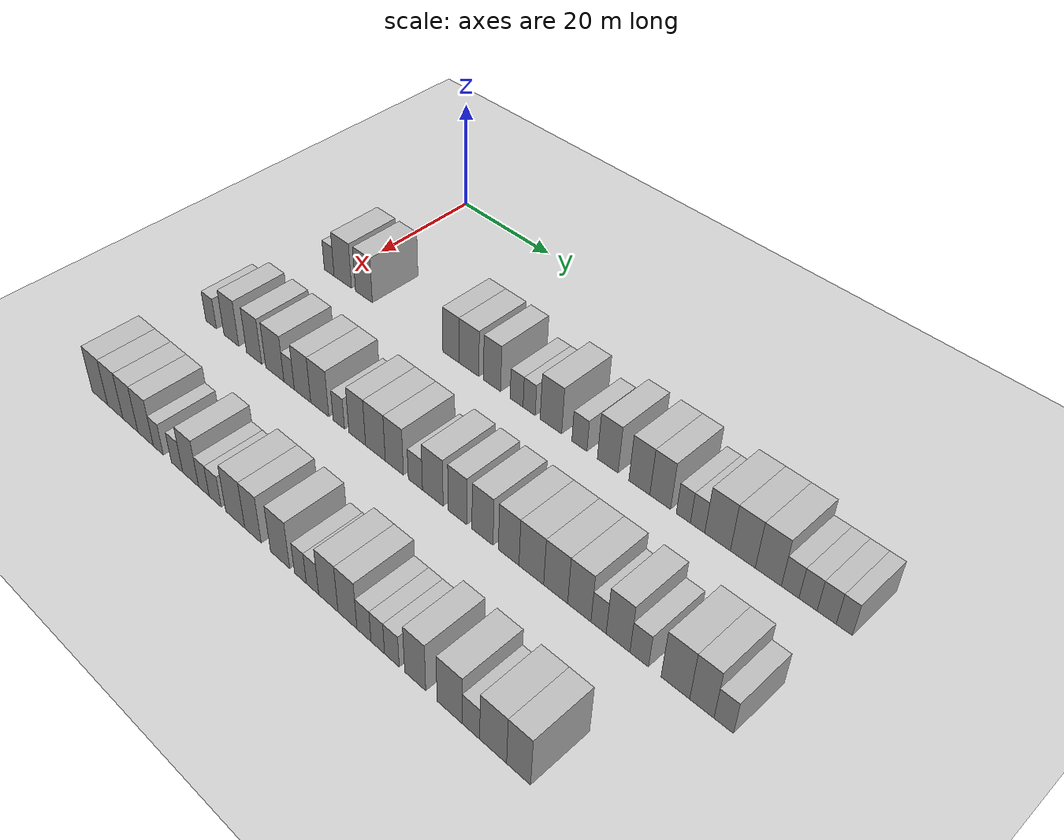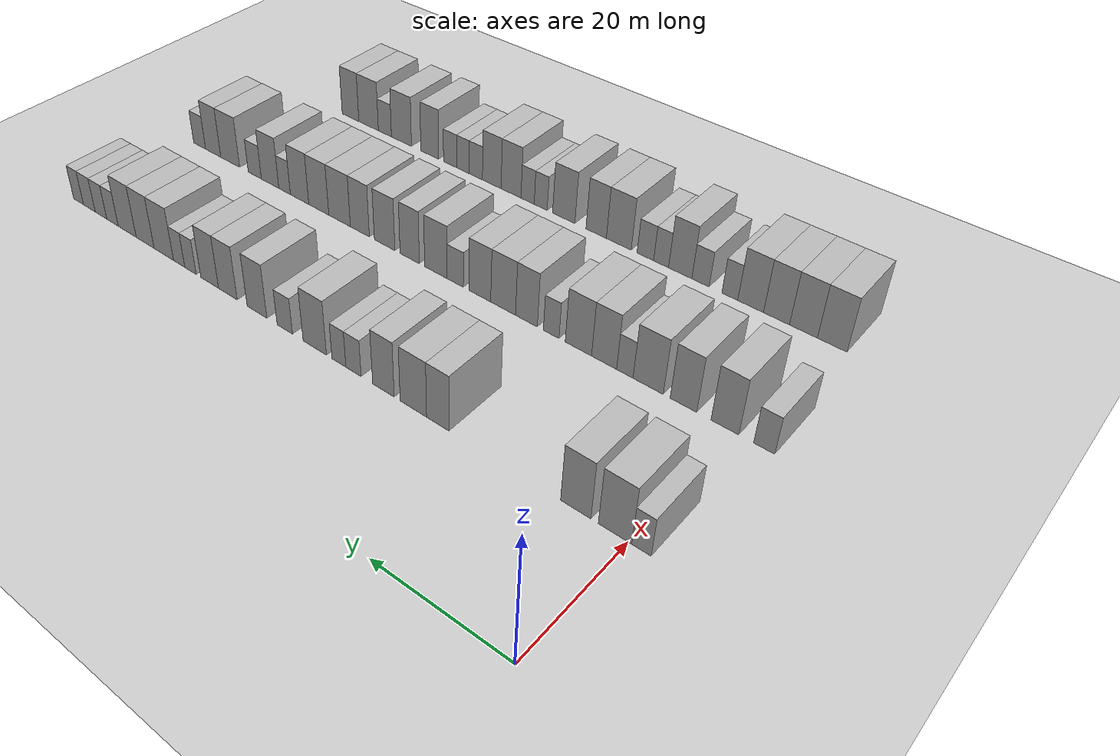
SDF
<sdf version="1.6">
 <world name="default">
  <include><name>ground_plane_1</name><uri>model://HANNAS_ground_plane</uri></include>
  <model name="building_88">
   <static>1</static>
   <pose>25.0000 -1.7095 0 0.000000 0.000000 0.000000</pose>
   <link name="link">
    <pose>0 0 3.00 0 0 0</pose>
    <collision name="collision"><geometry><box><size>10.0000 2.5234 6.0000</size></box></geometry></collision>
    <visual name="visual">
     <cast_shadows>0</cast_shadows>
     <geometry><box><size>10.0000 2.5234 6.0000</size></box></geometry>
     <material>
      <script>
       <uri>model://HANNAS_wall/materials/scripts</uri>
       <uri>model://HANNAS_wall/materials/textures</uri>
       <name>vrc/HANNAS_wall</name>
      </script>
     </material>
    </visual>
   </link>
  </model>
  <model name="building_89">
   <static>1</static>
   <pose>25.0000 1.7708 0 0.000000 0.000000 0.000000</pose>
   <link name="link">
    <pose>0 0 4.50 0 0 0</pose>
    <collision name="collision"><geometry><box><size>10.0000 4.4371 9.0000</size></box></geometry></collision>
    <visual name="visual">
     <cast_shadows>0</cast_shadows>
     <geometry><box><size>10.0000 4.4371 9.0000</size></box></geometry>
     <material>
      <script>
       <uri>model://HANNAS_wall/materials/scripts</uri>
       <uri>model://HANNAS_wall/materials/textures</uri>
       <name>vrc/HANNAS_wall</name>
      </script>
     </material>
    </visual>
   </link>
  </model>
  <model name="building_90">
   <static>1</static>
   <pose>25.0000 7.0803 0 0.000000 0.000000 0.000000</pose>
   <link name="link">
    <pose>0 0 4.50 0 0 0</pose>
    <collision name="collision"><geometry><box><size>10.0000 4.1819 9.0000</size></box></geometry></collision>
    <visual name="visual">
     <cast_shadows>0</cast_shadows>
     <geometry><box><size>10.0000 4.1819 9.0000</size></box></geometry>
     <material>
      <script>
       <uri>model://HANNAS_wall/materials/scripts</uri>
       <uri>model://HANNAS_wall/materials/textures</uri>
       <name>vrc/HANNAS_wall</name>
      </script>
     </material>
    </visual>
   </link>
  </model>
  <model name="building_91">
   <static>1</static>
   <pose>25.0000 27.5870 0 0.000000 0.000000 0.000000</pose>
   <link name="link">
    <pose>0 0 4.50 0 0 0</pose>
    <collision name="collision"><geometry><box><size>10.0000 3.6105 9.0000</size></box></geometry></collision>
    <visual name="visual">
     <cast_shadows>0</cast_shadows>
     <geometry><box><size>10.0000 3.6105 9.0000</size></box></geometry>
     <material>
      <script>
       <uri>model://HANNAS_wall/materials/scripts</uri>
       <uri>model://HANNAS_wall/materials/textures</uri>
       <name>vrc/HANNAS_wall</name>
      </script>
     </material>
    </visual>
   </link>
  </model>
  <model name="building_92">
   <static>1</static>
   <pose>25.0000 31.5603 0 0.000000 0.000000 0.000000</pose>
   <link name="link">
    <pose>0 0 4.50 0 0 0</pose>
    <collision name="collision"><geometry><box><size>10.0000 4.3361 9.0000</size></box></geometry></collision>
    <visual name="visual">
     <cast_shadows>0</cast_shadows>
     <geometry><box><size>10.0000 4.3361 9.0000</size></box></geometry>
     <material>
      <script>
       <uri>model://HANNAS_wall/materials/scripts</uri>
       <uri>model://HANNAS_wall/materials/textures</uri>
       <name>vrc/HANNAS_wall</name>
      </script>
     </material>
    </visual>
   </link>
  </model>
  <model name="building_93">
   <static>1</static>
   <pose>25.0000 36.5601 0 0.000000 0.000000 0.000000</pose>
   <link name="link">
    <pose>0 0 4.50 0 0 0</pose>
    <collision name="collision"><geometry><box><size>10.0000 3.6634 9.0000</size></box></geometry></collision>
    <visual name="visual">
     <cast_shadows>0</cast_shadows>
     <geometry><box><size>10.0000 3.6634 9.0000</size></box></geometry>
     <material>
      <script>
       <uri>model://HANNAS_wall/materials/scripts</uri>
       <uri>model://HANNAS_wall/materials/textures</uri>
       <name>vrc/HANNAS_wall</name>
      </script>
     </material>
    </visual>
   </link>
  </model>
  <model name="building_94">
   <static>1</static>
   <pose>25.0000 41.7332 0 0.000000 0.000000 0.000000</pose>
   <link name="link">
    <pose>0 0 3.00 0 0 0</pose>
    <collision name="collision"><geometry><box><size>10.0000 2.6827 6.0000</size></box></geometry></collision>
    <visual name="visual">
     <cast_shadows>0</cast_shadows>
     <geometry><box><size>10.0000 2.6827 6.0000</size></box></geometry>
     <material>
      <script>
       <uri>model://HANNAS_wall/materials/scripts</uri>
       <uri>model://HANNAS_wall/materials/textures</uri>
       <name>vrc/HANNAS_wall</name>
      </script>
     </material>
    </visual>
   </link>
  </model>
  <model name="building_95">
   <static>1</static>
   <pose>25.0000 44.3182 0 0.000000 0.000000 0.000000</pose>
   <link name="link">
    <pose>0 0 3.00 0 0 0</pose>
    <collision name="collision"><geometry><box><size>10.0000 2.4874 6.0000</size></box></geometry></collision>
    <visual name="visual">
     <cast_shadows>0</cast_shadows>
     <geometry><box><size>10.0000 2.4874 6.0000</size></box></geometry>
     <material>
      <script>
       <uri>model://HANNAS_wall/materials/scripts</uri>
       <uri>model://HANNAS_wall/materials/textures</uri>
       <name>vrc/HANNAS_wall</name>
      </script>
     </material>
    </visual>
   </link>
  </model>
  <model name="building_96">
   <static>1</static>
   <pose>25.0000 48.7139 0 0.000000 0.000000 0.000000</pose>
   <link name="link">
    <pose>0 0 4.50 0 0 0</pose>
    <collision name="collision"><geometry><box><size>10.0000 4.3042 9.0000</size></box></geometry></collision>
    <visual name="visual">
     <cast_shadows>0</cast_shadows>
     <geometry><box><size>10.0000 4.3042 9.0000</size></box></geometry>
     <material>
      <script>
       <uri>model://HANNAS_wall/materials/scripts</uri>
       <uri>model://HANNAS_wall/materials/textures</uri>
       <name>vrc/HANNAS_wall</name>
      </script>
     </material>
    </visual>
   </link>
  </model>
  <model name="building_97">
   <static>1</static>
   <pose>25.0000 54.3298 0 0.000000 0.000000 0.000000</pose>
   <link name="link">
    <pose>0 0 3.00 0 0 0</pose>
    <collision name="collision"><geometry><box><size>10.0000 2.9275 6.0000</size></box></geometry></collision>
    <visual name="visual">
     <cast_shadows>0</cast_shadows>
     <geometry><box><size>10.0000 2.9275 6.0000</size></box></geometry>
     <material>
      <script>
       <uri>model://HANNAS_wall/materials/scripts</uri>
       <uri>model://HANNAS_wall/materials/textures</uri>
       <name>vrc/HANNAS_wall</name>
      </script>
     </material>
    </visual>
   </link>
  </model>
  <model name="building_98">
   <static>1</static>
   <pose>25.0000 59.7411 0 0.000000 0.000000 0.000000</pose>
   <link name="link">
    <pose>0 0 4.50 0 0 0</pose>
    <collision name="collision"><geometry><box><size>10.0000 3.8953 9.0000</size></box></geometry></collision>
    <visual name="visual">
     <cast_shadows>0</cast_shadows>
     <geometry><box><size>10.0000 3.8953 9.0000</size></box></geometry>
     <material>
      <script>
       <uri>model://HANNAS_wall/materials/scripts</uri>
       <uri>model://HANNAS_wall/materials/textures</uri>
       <name>vrc/HANNAS_wall</name>
      </script>
     </material>
    </visual>
   </link>
  </model>
  <model name="building_99">
   <static>1</static>
   <pose>25.0000 65.6001 0 0.000000 0.000000 0.000000</pose>
   <link name="link">
    <pose>0 0 4.50 0 0 0</pose>
    <collision name="collision"><geometry><box><size>10.0000 3.8226 9.0000</size></box></geometry></collision>
    <visual name="visual">
     <cast_shadows>0</cast_shadows>
     <geometry><box><size>10.0000 3.8226 9.0000</size></box></geometry>
     <material>
      <script>
       <uri>model://HANNAS_wall/materials/scripts</uri>
       <uri>model://HANNAS_wall/materials/textures</uri>
       <name>vrc/HANNAS_wall</name>
      </script>
     </material>
    </visual>
   </link>
  </model>
  <model name="building_100">
   <static>1</static>
   <pose>25.0000 69.3575 0 0.000000 0.000000 0.000000</pose>
   <link name="link">
    <pose>0 0 4.50 0 0 0</pose>
    <collision name="collision"><geometry><box><size>10.0000 3.6922 9.0000</size></box></geometry></collision>
    <visual name="visual">
     <cast_shadows>0</cast_shadows>
     <geometry><box><size>10.0000 3.6922 9.0000</size></box></geometry>
     <material>
      <script>
       <uri>model://HANNAS_wall/materials/scripts</uri>
       <uri>model://HANNAS_wall/materials/textures</uri>
       <name>vrc/HANNAS_wall</name>
      </script>
     </material>
    </visual>
   </link>
  </model>
  <model name="building_101">
   <static>1</static>
   <pose>25.0000 73.4284 0 0.000000 0.000000 0.000000</pose>
   <link name="link">
    <pose>0 0 3.00 0 0 0</pose>
    <collision name="collision"><geometry><box><size>10.0000 2.4495 6.0000</size></box></geometry></collision>
    <visual name="visual">
     <cast_shadows>0</cast_shadows>
     <geometry><box><size>10.0000 2.4495 6.0000</size></box></geometry>
     <material>
      <script>
       <uri>model://HANNAS_wall/materials/scripts</uri>
       <uri>model://HANNAS_wall/materials/textures</uri>
       <name>vrc/HANNAS_wall</name>
      </script>
     </material>
    </visual>
   </link>
  </model>
  <model name="building_102">
   <static>1</static>
   <pose>25.0000 75.8847 0 0.000000 0.000000 0.000000</pose>
   <link name="link">
    <pose>0 0 3.00 0 0 0</pose>
    <collision name="collision"><geometry><box><size>10.0000 2.4631 6.0000</size></box></geometry></collision>
    <visual name="visual">
     <cast_shadows>0</cast_shadows>
     <geometry><box><size>10.0000 2.4631 6.0000</size></box></geometry>
     <material>
      <script>
       <uri>model://HANNAS_wall/materials/scripts</uri>
       <uri>model://HANNAS_wall/materials/textures</uri>
       <name>vrc/HANNAS_wall</name>
      </script>
     </material>
    </visual>
   </link>
  </model>
  <model name="building_103">
   <static>1</static>
   <pose>25.0000 79.2758 0 0.000000 0.000000 0.000000</pose>
   <link name="link">
    <pose>0 0 4.50 0 0 0</pose>
    <collision name="collision"><geometry><box><size>10.0000 4.3192 9.0000</size></box></geometry></collision>
    <visual name="visual">
     <cast_shadows>0</cast_shadows>
     <geometry><box><size>10.0000 4.3192 9.0000</size></box></geometry>
     <material>
      <script>
       <uri>model://HANNAS_wall/materials/scripts</uri>
       <uri>model://HANNAS_wall/materials/textures</uri>
       <name>vrc/HANNAS_wall</name>
      </script>
     </material>
    </visual>
   </link>
  </model>
  <model name="building_104">
   <static>1</static>
   <pose>25.0000 83.4762 0 0.000000 0.000000 0.000000</pose>
   <link name="link">
    <pose>0 0 4.50 0 0 0</pose>
    <collision name="collision"><geometry><box><size>10.0000 4.0816 9.0000</size></box></geometry></collision>
    <visual name="visual">
     <cast_shadows>0</cast_shadows>
     <geometry><box><size>10.0000 4.0816 9.0000</size></box></geometry>
     <material>
      <script>
       <uri>model://HANNAS_wall/materials/scripts</uri>
       <uri>model://HANNAS_wall/materials/textures</uri>
       <name>vrc/HANNAS_wall</name>
      </script>
     </material>
    </visual>
   </link>
  </model>
  <model name="building_105">
   <static>1</static>
   <pose>25.0000 87.6049 0 0.000000 0.000000 0.000000</pose>
   <link name="link">
    <pose>0 0 4.50 0 0 0</pose>
    <collision name="collision"><geometry><box><size>10.0000 4.1757 9.0000</size></box></geometry></collision>
    <visual name="visual">
     <cast_shadows>0</cast_shadows>
     <geometry><box><size>10.0000 4.1757 9.0000</size></box></geometry>
     <material>
      <script>
       <uri>model://HANNAS_wall/materials/scripts</uri>
       <uri>model://HANNAS_wall/materials/textures</uri>
       <name>vrc/HANNAS_wall</name>
      </script>
     </material>
    </visual>
   </link>
  </model>
  <model name="building_106">
   <static>1</static>
   <pose>25.0000 91.0682 0 0.000000 0.000000 0.000000</pose>
   <link name="link">
    <pose>0 0 3.00 0 0 0</pose>
    <collision name="collision"><geometry><box><size>10.0000 2.7509 6.0000</size></box></geometry></collision>
    <visual name="visual">
     <cast_shadows>0</cast_shadows>
     <geometry><box><size>10.0000 2.7509 6.0000</size></box></geometry>
     <material>
      <script>
       <uri>model://HANNAS_wall/materials/scripts</uri>
       <uri>model://HANNAS_wall/materials/textures</uri>
       <name>vrc/HANNAS_wall</name>
      </script>
     </material>
    </visual>
   </link>
  </model>
  <model name="building_107">
   <static>1</static>
   <pose>25.0000 93.8409 0 0.000000 0.000000 0.000000</pose>
   <link name="link">
    <pose>0 0 3.00 0 0 0</pose>
    <collision name="collision"><geometry><box><size>10.0000 2.7946 6.0000</size></box></geometry></collision>
    <visual name="visual">
     <cast_shadows>0</cast_shadows>
     <geometry><box><size>10.0000 2.7946 6.0000</size></box></geometry>
     <material>
      <script>
       <uri>model://HANNAS_wall/materials/scripts</uri>
       <uri>model://HANNAS_wall/materials/textures</uri>
       <name>vrc/HANNAS_wall</name>
      </script>
     </material>
    </visual>
   </link>
  </model>
  <model name="building_108">
   <static>1</static>
   <pose>25.0000 96.6786 0 0.000000 0.000000 0.000000</pose>
   <link name="link">
    <pose>0 0 3.00 0 0 0</pose>
    <collision name="collision"><geometry><box><size>10.0000 2.8807 6.0000</size></box></geometry></collision>
    <visual name="visual">
     <cast_shadows>0</cast_shadows>
     <geometry><box><size>10.0000 2.8807 6.0000</size></box></geometry>
     <material>
      <script>
       <uri>model://HANNAS_wall/materials/scripts</uri>
       <uri>model://HANNAS_wall/materials/textures</uri>
       <name>vrc/HANNAS_wall</name>
      </script>
     </material>
    </visual>
   </link>
  </model>
  <model name="building_109">
   <static>1</static>
   <pose>25.0000 99.3293 0 0.000000 0.000000 0.000000</pose>
   <link name="link">
    <pose>0 0 3.00 0 0 0</pose>
    <collision name="collision"><geometry><box><size>10.0000 2.4208 6.0000</size></box></geometry></collision>
    <visual name="visual">
     <cast_shadows>0</cast_shadows>
     <geometry><box><size>10.0000 2.4208 6.0000</size></box></geometry>
     <material>
      <script>
       <uri>model://HANNAS_wall/materials/scripts</uri>
       <uri>model://HANNAS_wall/materials/textures</uri>
       <name>vrc/HANNAS_wall</name>
      </script>
     </material>
    </visual>
   </link>
  </model>
  <model name="building_274">
   <static>1</static>
   <pose>47.0000 -4.4663 0 0.000000 0.000000 0.000000</pose>
   <link name="link">
    <pose>0 0 3.00 0 0 0</pose>
    <collision name="collision"><geometry><box><size>10.0000 2.8143 6.0000</size></box></geometry></collision>
    <visual name="visual">
     <cast_shadows>0</cast_shadows>
     <geometry><box><size>10.0000 2.8143 6.0000</size></box></geometry>
     <material>
      <script>
       <uri>model://HANNAS_wall/materials/scripts</uri>
       <uri>model://HANNAS_wall/materials/textures</uri>
       <name>vrc/HANNAS_wall</name>
      </script>
     </material>
    </visual>
   </link>
  </model>
  <model name="building_275">
   <static>1</static>
   <pose>47.0000 0.8607 0 0.000000 0.000000 0.000000</pose>
   <link name="link">
    <pose>0 0 4.50 0 0 0</pose>
    <collision name="collision"><geometry><box><size>10.0000 3.8395 9.0000</size></box></geometry></collision>
    <visual name="visual">
     <cast_shadows>0</cast_shadows>
     <geometry><box><size>10.0000 3.8395 9.0000</size></box></geometry>
     <material>
      <script>
       <uri>model://HANNAS_wall/materials/scripts</uri>
       <uri>model://HANNAS_wall/materials/textures</uri>
       <name>vrc/HANNAS_wall</name>
      </script>
     </material>
    </visual>
   </link>
  </model>
  <model name="building_276">
   <static>1</static>
   <pose>47.0000 6.6908 0 0.000000 0.000000 0.000000</pose>
   <link name="link">
    <pose>0 0 4.50 0 0 0</pose>
    <collision name="collision"><geometry><box><size>10.0000 3.8208 9.0000</size></box></geometry></collision>
    <visual name="visual">
     <cast_shadows>0</cast_shadows>
     <geometry><box><size>10.0000 3.8208 9.0000</size></box></geometry>
     <material>
      <script>
       <uri>model://HANNAS_wall/materials/scripts</uri>
       <uri>model://HANNAS_wall/materials/textures</uri>
       <name>vrc/HANNAS_wall</name>
      </script>
     </material>
    </visual>
   </link>
  </model>
  <model name="building_277">
   <static>1</static>
   <pose>47.0000 11.8435 0 0.000000 0.000000 0.000000</pose>
   <link name="link">
    <pose>0 0 4.50 0 0 0</pose>
    <collision name="collision"><geometry><box><size>10.0000 4.4847 9.0000</size></box></geometry></collision>
    <visual name="visual">
     <cast_shadows>0</cast_shadows>
     <geometry><box><size>10.0000 4.4847 9.0000</size></box></geometry>
     <material>
      <script>
       <uri>model://HANNAS_wall/materials/scripts</uri>
       <uri>model://HANNAS_wall/materials/textures</uri>
       <name>vrc/HANNAS_wall</name>
      </script>
     </material>
    </visual>
   </link>
  </model>
  <model name="building_278">
   <static>1</static>
   <pose>47.0000 15.3351 0 0.000000 0.000000 0.000000</pose>
   <link name="link">
    <pose>0 0 3.00 0 0 0</pose>
    <collision name="collision"><geometry><box><size>10.0000 2.4985 6.0000</size></box></geometry></collision>
    <visual name="visual">
     <cast_shadows>0</cast_shadows>
     <geometry><box><size>10.0000 2.4985 6.0000</size></box></geometry>
     <material>
      <script>
       <uri>model://HANNAS_wall/materials/scripts</uri>
       <uri>model://HANNAS_wall/materials/textures</uri>
       <name>vrc/HANNAS_wall</name>
      </script>
     </material>
    </visual>
   </link>
  </model>
  <model name="building_279">
   <static>1</static>
   <pose>47.0000 18.5267 0 0.000000 0.000000 0.000000</pose>
   <link name="link">
    <pose>0 0 4.50 0 0 0</pose>
    <collision name="collision"><geometry><box><size>10.0000 3.8846 9.0000</size></box></geometry></collision>
    <visual name="visual">
     <cast_shadows>0</cast_shadows>
     <geometry><box><size>10.0000 3.8846 9.0000</size></box></geometry>
     <material>
      <script>
       <uri>model://HANNAS_wall/materials/scripts</uri>
       <uri>model://HANNAS_wall/materials/textures</uri>
       <name>vrc/HANNAS_wall</name>
      </script>
     </material>
    </visual>
   </link>
  </model>
  <model name="building_280">
   <static>1</static>
   <pose>47.0000 22.5643 0 0.000000 0.000000 0.000000</pose>
   <link name="link">
    <pose>0 0 4.50 0 0 0</pose>
    <collision name="collision"><geometry><box><size>10.0000 4.1906 9.0000</size></box></geometry></collision>
    <visual name="visual">
     <cast_shadows>0</cast_shadows>
     <geometry><box><size>10.0000 4.1906 9.0000</size></box></geometry>
     <material>
      <script>
       <uri>model://HANNAS_wall/materials/scripts</uri>
       <uri>model://HANNAS_wall/materials/textures</uri>
       <name>vrc/HANNAS_wall</name>
      </script>
     </material>
    </visual>
   </link>
  </model>
  <model name="building_281">
   <static>1</static>
   <pose>47.0000 26.9421 0 0.000000 0.000000 0.000000</pose>
   <link name="link">
    <pose>0 0 3.00 0 0 0</pose>
    <collision name="collision"><geometry><box><size>10.0000 2.5650 6.0000</size></box></geometry></collision>
    <visual name="visual">
     <cast_shadows>0</cast_shadows>
     <geometry><box><size>10.0000 2.5650 6.0000</size></box></geometry>
     <material>
      <script>
       <uri>model://HANNAS_wall/materials/scripts</uri>
       <uri>model://HANNAS_wall/materials/textures</uri>
       <name>vrc/HANNAS_wall</name>
      </script>
     </material>
    </visual>
   </link>
  </model>
  <model name="building_282">
   <static>1</static>
   <pose>47.0000 31.0616 0 0.000000 0.000000 0.000000</pose>
   <link name="link">
    <pose>0 0 4.50 0 0 0</pose>
    <collision name="collision"><geometry><box><size>10.0000 3.6739 9.0000</size></box></geometry></collision>
    <visual name="visual">
     <cast_shadows>0</cast_shadows>
     <geometry><box><size>10.0000 3.6739 9.0000</size></box></geometry>
     <material>
      <script>
       <uri>model://HANNAS_wall/materials/scripts</uri>
       <uri>model://HANNAS_wall/materials/textures</uri>
       <name>vrc/HANNAS_wall</name>
      </script>
     </material>
    </visual>
   </link>
  </model>
  <model name="building_283">
   <static>1</static>
   <pose>47.0000 35.0347 0 0.000000 0.000000 0.000000</pose>
   <link name="link">
    <pose>0 0 4.50 0 0 0</pose>
    <collision name="collision"><geometry><box><size>10.0000 4.2725 9.0000</size></box></geometry></collision>
    <visual name="visual">
     <cast_shadows>0</cast_shadows>
     <geometry><box><size>10.0000 4.2725 9.0000</size></box></geometry>
     <material>
      <script>
       <uri>model://HANNAS_wall/materials/scripts</uri>
       <uri>model://HANNAS_wall/materials/textures</uri>
       <name>vrc/HANNAS_wall</name>
      </script>
     </material>
    </visual>
   </link>
  </model>
  <model name="building_284">
   <static>1</static>
   <pose>47.0000 39.0945 0 0.000000 0.000000 0.000000</pose>
   <link name="link">
    <pose>0 0 4.50 0 0 0</pose>
    <collision name="collision"><geometry><box><size>10.0000 3.8472 9.0000</size></box></geometry></collision>
    <visual name="visual">
     <cast_shadows>0</cast_shadows>
     <geometry><box><size>10.0000 3.8472 9.0000</size></box></geometry>
     <material>
      <script>
       <uri>model://HANNAS_wall/materials/scripts</uri>
       <uri>model://HANNAS_wall/materials/textures</uri>
       <name>vrc/HANNAS_wall</name>
      </script>
     </material>
    </visual>
   </link>
  </model>
  <model name="building_285">
   <static>1</static>
   <pose>47.0000 43.4852 0 0.000000 0.000000 0.000000</pose>
   <link name="link">
    <pose>0 0 3.00 0 0 0</pose>
    <collision name="collision"><geometry><box><size>10.0000 2.9341 6.0000</size></box></geometry></collision>
    <visual name="visual">
     <cast_shadows>0</cast_shadows>
     <geometry><box><size>10.0000 2.9341 6.0000</size></box></geometry>
     <material>
      <script>
       <uri>model://HANNAS_wall/materials/scripts</uri>
       <uri>model://HANNAS_wall/materials/textures</uri>
       <name>vrc/HANNAS_wall</name>
      </script>
     </material>
    </visual>
   </link>
  </model>
  <model name="building_286">
   <static>1</static>
   <pose>47.0000 47.0379 0 0.000000 0.000000 0.000000</pose>
   <link name="link">
    <pose>0 0 4.50 0 0 0</pose>
    <collision name="collision"><geometry><box><size>10.0000 4.1714 9.0000</size></box></geometry></collision>
    <visual name="visual">
     <cast_shadows>0</cast_shadows>
     <geometry><box><size>10.0000 4.1714 9.0000</size></box></geometry>
     <material>
      <script>
       <uri>model://HANNAS_wall/materials/scripts</uri>
       <uri>model://HANNAS_wall/materials/textures</uri>
       <name>vrc/HANNAS_wall</name>
      </script>
     </material>
    </visual>
   </link>
  </model>
  <model name="building_287">
   <static>1</static>
   <pose>47.0000 51.9585 0 0.000000 0.000000 0.000000</pose>
   <link name="link">
    <pose>0 0 4.50 0 0 0</pose>
    <collision name="collision"><geometry><box><size>10.0000 3.6699 9.0000</size></box></geometry></collision>
    <visual name="visual">
     <cast_shadows>0</cast_shadows>
     <geometry><box><size>10.0000 3.6699 9.0000</size></box></geometry>
     <material>
      <script>
       <uri>model://HANNAS_wall/materials/scripts</uri>
       <uri>model://HANNAS_wall/materials/textures</uri>
       <name>vrc/HANNAS_wall</name>
      </script>
     </material>
    </visual>
   </link>
  </model>
  <model name="building_288">
   <static>1</static>
   <pose>47.0000 56.8059 0 0.000000 0.000000 0.000000</pose>
   <link name="link">
    <pose>0 0 4.50 0 0 0</pose>
    <collision name="collision"><geometry><box><size>10.0000 4.0249 9.0000</size></box></geometry></collision>
    <visual name="visual">
     <cast_shadows>0</cast_shadows>
     <geometry><box><size>10.0000 4.0249 9.0000</size></box></geometry>
     <material>
      <script>
       <uri>model://HANNAS_wall/materials/scripts</uri>
       <uri>model://HANNAS_wall/materials/textures</uri>
       <name>vrc/HANNAS_wall</name>
      </script>
     </material>
    </visual>
   </link>
  </model>
  <model name="building_289">
   <static>1</static>
   <pose>47.0000 61.7333 0 0.000000 0.000000 0.000000</pose>
   <link name="link">
    <pose>0 0 4.50 0 0 0</pose>
    <collision name="collision"><geometry><box><size>10.0000 3.8298 9.0000</size></box></geometry></collision>
    <visual name="visual">
     <cast_shadows>0</cast_shadows>
     <geometry><box><size>10.0000 3.8298 9.0000</size></box></geometry>
     <material>
      <script>
       <uri>model://HANNAS_wall/materials/scripts</uri>
       <uri>model://HANNAS_wall/materials/textures</uri>
       <name>vrc/HANNAS_wall</name>
      </script>
     </material>
    </visual>
   </link>
  </model>
  <model name="building_290">
   <static>1</static>
   <pose>47.0000 65.8833 0 0.000000 0.000000 0.000000</pose>
   <link name="link">
    <pose>0 0 4.50 0 0 0</pose>
    <collision name="collision"><geometry><box><size>10.0000 4.4701 9.0000</size></box></geometry></collision>
    <visual name="visual">
     <cast_shadows>0</cast_shadows>
     <geometry><box><size>10.0000 4.4701 9.0000</size></box></geometry>
     <material>
      <script>
       <uri>model://HANNAS_wall/materials/scripts</uri>
       <uri>model://HANNAS_wall/materials/textures</uri>
       <name>vrc/HANNAS_wall</name>
      </script>
     </material>
    </visual>
   </link>
  </model>
  <model name="building_291">
   <static>1</static>
   <pose>47.0000 70.2341 0 0.000000 0.000000 0.000000</pose>
   <link name="link">
    <pose>0 0 4.50 0 0 0</pose>
    <collision name="collision"><geometry><box><size>10.0000 4.2315 9.0000</size></box></geometry></collision>
    <visual name="visual">
     <cast_shadows>0</cast_shadows>
     <geometry><box><size>10.0000 4.2315 9.0000</size></box></geometry>
     <material>
      <script>
       <uri>model://HANNAS_wall/materials/scripts</uri>
       <uri>model://HANNAS_wall/materials/textures</uri>
       <name>vrc/HANNAS_wall</name>
      </script>
     </material>
    </visual>
   </link>
  </model>
  <model name="building_292">
   <static>1</static>
   <pose>47.0000 74.3507 0 0.000000 0.000000 0.000000</pose>
   <link name="link">
    <pose>0 0 4.50 0 0 0</pose>
    <collision name="collision"><geometry><box><size>10.0000 4.0016 9.0000</size></box></geometry></collision>
    <visual name="visual">
     <cast_shadows>0</cast_shadows>
     <geometry><box><size>10.0000 4.0016 9.0000</size></box></geometry>
     <material>
      <script>
       <uri>model://HANNAS_wall/materials/scripts</uri>
       <uri>model://HANNAS_wall/materials/textures</uri>
       <name>vrc/HANNAS_wall</name>
      </script>
     </material>
    </visual>
   </link>
  </model>
  <model name="building_293">
   <static>1</static>
   <pose>47.0000 77.6265 0 0.000000 0.000000 0.000000</pose>
   <link name="link">
    <pose>0 0 3.00 0 0 0</pose>
    <collision name="collision"><geometry><box><size>10.0000 2.5500 6.0000</size></box></geometry></collision>
    <visual name="visual">
     <cast_shadows>0</cast_shadows>
     <geometry><box><size>10.0000 2.5500 6.0000</size></box></geometry>
     <material>
      <script>
       <uri>model://HANNAS_wall/materials/scripts</uri>
       <uri>model://HANNAS_wall/materials/textures</uri>
       <name>vrc/HANNAS_wall</name>
      </script>
     </material>
    </visual>
   </link>
  </model>
  <model name="building_294">
   <static>1</static>
   <pose>47.0000 80.8652 0 0.000000 0.000000 0.000000</pose>
   <link name="link">
    <pose>0 0 4.50 0 0 0</pose>
    <collision name="collision"><geometry><box><size>10.0000 3.9274 9.0000</size></box></geometry></collision>
    <visual name="visual">
     <cast_shadows>0</cast_shadows>
     <geometry><box><size>10.0000 3.9274 9.0000</size></box></geometry>
     <material>
      <script>
       <uri>model://HANNAS_wall/materials/scripts</uri>
       <uri>model://HANNAS_wall/materials/textures</uri>
       <name>vrc/HANNAS_wall</name>
      </script>
     </material>
    </visual>
   </link>
  </model>
  <model name="building_295">
   <static>1</static>
   <pose>47.0000 84.3284 0 0.000000 0.000000 0.000000</pose>
   <link name="link">
    <pose>0 0 3.00 0 0 0</pose>
    <collision name="collision"><geometry><box><size>10.0000 2.9989 6.0000</size></box></geometry></collision>
    <visual name="visual">
     <cast_shadows>0</cast_shadows>
     <geometry><box><size>10.0000 2.9989 6.0000</size></box></geometry>
     <material>
      <script>
       <uri>model://HANNAS_wall/materials/scripts</uri>
       <uri>model://HANNAS_wall/materials/textures</uri>
       <name>vrc/HANNAS_wall</name>
      </script>
     </material>
    </visual>
   </link>
  </model>
  <model name="building_296">
   <static>1</static>
   <pose>47.0000 90.0485 0 0.000000 0.000000 0.000000</pose>
   <link name="link">
    <pose>0 0 4.50 0 0 0</pose>
    <collision name="collision"><geometry><box><size>10.0000 4.4412 9.0000</size></box></geometry></collision>
    <visual name="visual">
     <cast_shadows>0</cast_shadows>
     <geometry><box><size>10.0000 4.4412 9.0000</size></box></geometry>
     <material>
      <script>
       <uri>model://HANNAS_wall/materials/scripts</uri>
       <uri>model://HANNAS_wall/materials/textures</uri>
       <name>vrc/HANNAS_wall</name>
      </script>
     </material>
    </visual>
   </link>
  </model>
  <model name="building_297">
   <static>1</static>
   <pose>47.0000 94.1055 0 0.000000 0.000000 0.000000</pose>
   <link name="link">
    <pose>0 0 4.50 0 0 0</pose>
    <collision name="collision"><geometry><box><size>10.0000 3.6728 9.0000</size></box></geometry></collision>
    <visual name="visual">
     <cast_shadows>0</cast_shadows>
     <geometry><box><size>10.0000 3.6728 9.0000</size></box></geometry>
     <material>
      <script>
       <uri>model://HANNAS_wall/materials/scripts</uri>
       <uri>model://HANNAS_wall/materials/textures</uri>
       <name>vrc/HANNAS_wall</name>
      </script>
     </material>
    </visual>
   </link>
  </model>
  <model name="building_298">
   <static>1</static>
   <pose>47.0000 97.3930 0 0.000000 0.000000 0.000000</pose>
   <link name="link">
    <pose>0 0 3.00 0 0 0</pose>
    <collision name="collision"><geometry><box><size>10.0000 2.9022 6.0000</size></box></geometry></collision>
    <visual name="visual">
     <cast_shadows>0</cast_shadows>
     <geometry><box><size>10.0000 2.9022 6.0000</size></box></geometry>
     <material>
      <script>
       <uri>model://HANNAS_wall/materials/scripts</uri>
       <uri>model://HANNAS_wall/materials/textures</uri>
       <name>vrc/HANNAS_wall</name>
      </script>
     </material>
    </visual>
   </link>
  </model>
  <model name="building_465">
   <static>1</static>
   <pose>69.0000 -2.1582 0 0.000000 0.000000 0.000000</pose>
   <link name="link">
    <pose>0 0 4.50 0 0 0</pose>
    <collision name="collision"><geometry><box><size>10.0000 4.2136 9.0000</size></box></geometry></collision>
    <visual name="visual">
     <cast_shadows>0</cast_shadows>
     <geometry><box><size>10.0000 4.2136 9.0000</size></box></geometry>
     <material>
      <script>
       <uri>model://HANNAS_wall/materials/scripts</uri>
       <uri>model://HANNAS_wall/materials/textures</uri>
       <name>vrc/HANNAS_wall</name>
      </script>
     </material>
    </visual>
   </link>
  </model>
  <model name="building_466">
   <static>1</static>
   <pose>69.0000 1.9636 0 0.000000 0.000000 0.000000</pose>
   <link name="link">
    <pose>0 0 4.50 0 0 0</pose>
    <collision name="collision"><geometry><box><size>10.0000 4.0298 9.0000</size></box></geometry></collision>
    <visual name="visual">
     <cast_shadows>0</cast_shadows>
     <geometry><box><size>10.0000 4.0298 9.0000</size></box></geometry>
     <material>
      <script>
       <uri>model://HANNAS_wall/materials/scripts</uri>
       <uri>model://HANNAS_wall/materials/textures</uri>
       <name>vrc/HANNAS_wall</name>
      </script>
     </material>
    </visual>
   </link>
  </model>
  <model name="building_467">
   <static>1</static>
   <pose>69.0000 5.9141 0 0.000000 0.000000 0.000000</pose>
   <link name="link">
    <pose>0 0 4.50 0 0 0</pose>
    <collision name="collision"><geometry><box><size>10.0000 3.8712 9.0000</size></box></geometry></collision>
    <visual name="visual">
     <cast_shadows>0</cast_shadows>
     <geometry><box><size>10.0000 3.8712 9.0000</size></box></geometry>
     <material>
      <script>
       <uri>model://HANNAS_wall/materials/scripts</uri>
       <uri>model://HANNAS_wall/materials/textures</uri>
       <name>vrc/HANNAS_wall</name>
      </script>
     </material>
    </visual>
   </link>
  </model>
  <model name="building_468">
   <static>1</static>
   <pose>69.0000 9.8162 0 0.000000 0.000000 0.000000</pose>
   <link name="link">
    <pose>0 0 4.50 0 0 0</pose>
    <collision name="collision"><geometry><box><size>10.0000 3.9331 9.0000</size></box></geometry></collision>
    <visual name="visual">
     <cast_shadows>0</cast_shadows>
     <geometry><box><size>10.0000 3.9331 9.0000</size></box></geometry>
     <material>
      <script>
       <uri>model://HANNAS_wall/materials/scripts</uri>
       <uri>model://HANNAS_wall/materials/textures</uri>
       <name>vrc/HANNAS_wall</name>
      </script>
     </material>
    </visual>
   </link>
  </model>
  <model name="building_469">
   <static>1</static>
   <pose>69.0000 13.0166 0 0.000000 0.000000 0.000000</pose>
   <link name="link">
    <pose>0 0 3.00 0 0 0</pose>
    <collision name="collision"><geometry><box><size>10.0000 2.4676 6.0000</size></box></geometry></collision>
    <visual name="visual">
     <cast_shadows>0</cast_shadows>
     <geometry><box><size>10.0000 2.4676 6.0000</size></box></geometry>
     <material>
      <script>
       <uri>model://HANNAS_wall/materials/scripts</uri>
       <uri>model://HANNAS_wall/materials/textures</uri>
       <name>vrc/HANNAS_wall</name>
      </script>
     </material>
    </visual>
   </link>
  </model>
  <model name="building_470">
   <static>1</static>
   <pose>69.0000 17.6376 0 0.000000 0.000000 0.000000</pose>
   <link name="link">
    <pose>0 0 3.00 0 0 0</pose>
    <collision name="collision"><geometry><box><size>10.0000 2.7744 6.0000</size></box></geometry></collision>
    <visual name="visual">
     <cast_shadows>0</cast_shadows>
     <geometry><box><size>10.0000 2.7744 6.0000</size></box></geometry>
     <material>
      <script>
       <uri>model://HANNAS_wall/materials/scripts</uri>
       <uri>model://HANNAS_wall/materials/textures</uri>
       <name>vrc/HANNAS_wall</name>
      </script>
     </material>
    </visual>
   </link>
  </model>
  <model name="building_471">
   <static>1</static>
   <pose>69.0000 20.9280 0 0.000000 0.000000 0.000000</pose>
   <link name="link">
    <pose>0 0 4.50 0 0 0</pose>
    <collision name="collision"><geometry><box><size>10.0000 3.8065 9.0000</size></box></geometry></collision>
    <visual name="visual">
     <cast_shadows>0</cast_shadows>
     <geometry><box><size>10.0000 3.8065 9.0000</size></box></geometry>
     <material>
      <script>
       <uri>model://HANNAS_wall/materials/scripts</uri>
       <uri>model://HANNAS_wall/materials/textures</uri>
       <name>vrc/HANNAS_wall</name>
      </script>
     </material>
    </visual>
   </link>
  </model>
  <model name="building_472">
   <static>1</static>
   <pose>69.0000 24.0694 0 0.000000 0.000000 0.000000</pose>
   <link name="link">
    <pose>0 0 3.00 0 0 0</pose>
    <collision name="collision"><geometry><box><size>10.0000 2.4761 6.0000</size></box></geometry></collision>
    <visual name="visual">
     <cast_shadows>0</cast_shadows>
     <geometry><box><size>10.0000 2.4761 6.0000</size></box></geometry>
     <material>
      <script>
       <uri>model://HANNAS_wall/materials/scripts</uri>
       <uri>model://HANNAS_wall/materials/textures</uri>
       <name>vrc/HANNAS_wall</name>
      </script>
     </material>
    </visual>
   </link>
  </model>
  <model name="building_473">
   <static>1</static>
   <pose>69.0000 26.7030 0 0.000000 0.000000 0.000000</pose>
   <link name="link">
    <pose>0 0 3.00 0 0 0</pose>
    <collision name="collision"><geometry><box><size>10.0000 2.7911 6.0000</size></box></geometry></collision>
    <visual name="visual">
     <cast_shadows>0</cast_shadows>
     <geometry><box><size>10.0000 2.7911 6.0000</size></box></geometry>
     <material>
      <script>
       <uri>model://HANNAS_wall/materials/scripts</uri>
       <uri>model://HANNAS_wall/materials/textures</uri>
       <name>vrc/HANNAS_wall</name>
      </script>
     </material>
    </visual>
   </link>
  </model>
  <model name="building_474">
   <static>1</static>
   <pose>69.0000 31.2573 0 0.000000 0.000000 0.000000</pose>
   <link name="link">
    <pose>0 0 4.50 0 0 0</pose>
    <collision name="collision"><geometry><box><size>10.0000 4.3175 9.0000</size></box></geometry></collision>
    <visual name="visual">
     <cast_shadows>0</cast_shadows>
     <geometry><box><size>10.0000 4.3175 9.0000</size></box></geometry>
     <material>
      <script>
       <uri>model://HANNAS_wall/materials/scripts</uri>
       <uri>model://HANNAS_wall/materials/textures</uri>
       <name>vrc/HANNAS_wall</name>
      </script>
     </material>
    </visual>
   </link>
  </model>
  <model name="building_475">
   <static>1</static>
   <pose>69.0000 35.2203 0 0.000000 0.000000 0.000000</pose>
   <link name="link">
    <pose>0 0 4.50 0 0 0</pose>
    <collision name="collision"><geometry><box><size>10.0000 3.6085 9.0000</size></box></geometry></collision>
    <visual name="visual">
     <cast_shadows>0</cast_shadows>
     <geometry><box><size>10.0000 3.6085 9.0000</size></box></geometry>
     <material>
      <script>
       <uri>model://HANNAS_wall/materials/scripts</uri>
       <uri>model://HANNAS_wall/materials/textures</uri>
       <name>vrc/HANNAS_wall</name>
      </script>
     </material>
    </visual>
   </link>
  </model>
  <model name="building_476">
   <static>1</static>
   <pose>69.0000 41.0681 0 0.000000 0.000000 0.000000</pose>
   <link name="link">
    <pose>0 0 4.50 0 0 0</pose>
    <collision name="collision"><geometry><box><size>10.0000 4.0871 9.0000</size></box></geometry></collision>
    <visual name="visual">
     <cast_shadows>0</cast_shadows>
     <geometry><box><size>10.0000 4.0871 9.0000</size></box></geometry>
     <material>
      <script>
       <uri>model://HANNAS_wall/materials/scripts</uri>
       <uri>model://HANNAS_wall/materials/textures</uri>
       <name>vrc/HANNAS_wall</name>
      </script>
     </material>
    </visual>
   </link>
  </model>
  <model name="building_477">
   <static>1</static>
   <pose>69.0000 45.3365 0 0.000000 0.000000 0.000000</pose>
   <link name="link">
    <pose>0 0 3.00 0 0 0</pose>
    <collision name="collision"><geometry><box><size>10.0000 2.4496 6.0000</size></box></geometry></collision>
    <visual name="visual">
     <cast_shadows>0</cast_shadows>
     <geometry><box><size>10.0000 2.4496 6.0000</size></box></geometry>
     <material>
      <script>
       <uri>model://HANNAS_wall/materials/scripts</uri>
       <uri>model://HANNAS_wall/materials/textures</uri>
       <name>vrc/HANNAS_wall</name>
      </script>
     </material>
    </visual>
   </link>
  </model>
  <model name="building_478">
   <static>1</static>
   <pose>69.0000 47.8229 0 0.000000 0.000000 0.000000</pose>
   <link name="link">
    <pose>0 0 3.00 0 0 0</pose>
    <collision name="collision"><geometry><box><size>10.0000 2.5231 6.0000</size></box></geometry></collision>
    <visual name="visual">
     <cast_shadows>0</cast_shadows>
     <geometry><box><size>10.0000 2.5231 6.0000</size></box></geometry>
     <material>
      <script>
       <uri>model://HANNAS_wall/materials/scripts</uri>
       <uri>model://HANNAS_wall/materials/textures</uri>
       <name>vrc/HANNAS_wall</name>
      </script>
     </material>
    </visual>
   </link>
  </model>
  <model name="building_479">
   <static>1</static>
   <pose>69.0000 51.0149 0 0.000000 0.000000 0.000000</pose>
   <link name="link">
    <pose>0 0 4.50 0 0 0</pose>
    <collision name="collision"><geometry><box><size>10.0000 3.8610 9.0000</size></box></geometry></collision>
    <visual name="visual">
     <cast_shadows>0</cast_shadows>
     <geometry><box><size>10.0000 3.8610 9.0000</size></box></geometry>
     <material>
      <script>
       <uri>model://HANNAS_wall/materials/scripts</uri>
       <uri>model://HANNAS_wall/materials/textures</uri>
       <name>vrc/HANNAS_wall</name>
      </script>
     </material>
    </visual>
   </link>
  </model>
  <model name="building_480">
   <static>1</static>
   <pose>69.0000 54.7886 0 0.000000 0.000000 0.000000</pose>
   <link name="link">
    <pose>0 0 4.50 0 0 0</pose>
    <collision name="collision"><geometry><box><size>10.0000 3.6863 9.0000</size></box></geometry></collision>
    <visual name="visual">
     <cast_shadows>0</cast_shadows>
     <geometry><box><size>10.0000 3.6863 9.0000</size></box></geometry>
     <material>
      <script>
       <uri>model://HANNAS_wall/materials/scripts</uri>
       <uri>model://HANNAS_wall/materials/textures</uri>
       <name>vrc/HANNAS_wall</name>
      </script>
     </material>
    </visual>
   </link>
  </model>
  <model name="building_481">
   <static>1</static>
   <pose>69.0000 57.9792 0 0.000000 0.000000 0.000000</pose>
   <link name="link">
    <pose>0 0 3.00 0 0 0</pose>
    <collision name="collision"><geometry><box><size>10.0000 2.6950 6.0000</size></box></geometry></collision>
    <visual name="visual">
     <cast_shadows>0</cast_shadows>
     <geometry><box><size>10.0000 2.6950 6.0000</size></box></geometry>
     <material>
      <script>
       <uri>model://HANNAS_wall/materials/scripts</uri>
       <uri>model://HANNAS_wall/materials/textures</uri>
       <name>vrc/HANNAS_wall</name>
      </script>
     </material>
    </visual>
   </link>
  </model>
  <model name="building_482">
   <static>1</static>
   <pose>69.0000 60.5986 0 0.000000 0.000000 0.000000</pose>
   <link name="link">
    <pose>0 0 3.00 0 0 0</pose>
    <collision name="collision"><geometry><box><size>10.0000 2.5438 6.0000</size></box></geometry></collision>
    <visual name="visual">
     <cast_shadows>0</cast_shadows>
     <geometry><box><size>10.0000 2.5438 6.0000</size></box></geometry>
     <material>
      <script>
       <uri>model://HANNAS_wall/materials/scripts</uri>
       <uri>model://HANNAS_wall/materials/textures</uri>
       <name>vrc/HANNAS_wall</name>
      </script>
     </material>
    </visual>
   </link>
  </model>
  <model name="building_483">
   <static>1</static>
   <pose>69.0000 63.2234 0 0.000000 0.000000 0.000000</pose>
   <link name="link">
    <pose>0 0 3.00 0 0 0</pose>
    <collision name="collision"><geometry><box><size>10.0000 2.7057 6.0000</size></box></geometry></collision>
    <visual name="visual">
     <cast_shadows>0</cast_shadows>
     <geometry><box><size>10.0000 2.7057 6.0000</size></box></geometry>
     <material>
      <script>
       <uri>model://HANNAS_wall/materials/scripts</uri>
       <uri>model://HANNAS_wall/materials/textures</uri>
       <name>vrc/HANNAS_wall</name>
      </script>
     </material>
    </visual>
   </link>
  </model>
  <model name="building_484">
   <static>1</static>
   <pose>69.0000 67.4701 0 0.000000 0.000000 0.000000</pose>
   <link name="link">
    <pose>0 0 4.50 0 0 0</pose>
    <collision name="collision"><geometry><box><size>10.0000 3.7876 9.0000</size></box></geometry></collision>
    <visual name="visual">
     <cast_shadows>0</cast_shadows>
     <geometry><box><size>10.0000 3.7876 9.0000</size></box></geometry>
     <material>
      <script>
       <uri>model://HANNAS_wall/materials/scripts</uri>
       <uri>model://HANNAS_wall/materials/textures</uri>
       <name>vrc/HANNAS_wall</name>
      </script>
     </material>
    </visual>
   </link>
  </model>
  <model name="building_485">
   <static>1</static>
   <pose>69.0000 73.5506 0 0.000000 0.000000 0.000000</pose>
   <link name="link">
    <pose>0 0 4.50 0 0 0</pose>
    <collision name="collision"><geometry><box><size>10.0000 4.3735 9.0000</size></box></geometry></collision>
    <visual name="visual">
     <cast_shadows>0</cast_shadows>
     <geometry><box><size>10.0000 4.3735 9.0000</size></box></geometry>
     <material>
      <script>
       <uri>model://HANNAS_wall/materials/scripts</uri>
       <uri>model://HANNAS_wall/materials/textures</uri>
       <name>vrc/HANNAS_wall</name>
      </script>
     </material>
    </visual>
   </link>
  </model>
  <model name="building_486">
   <static>1</static>
   <pose>69.0000 77.1958 0 0.000000 0.000000 0.000000</pose>
   <link name="link">
    <pose>0 0 3.00 0 0 0</pose>
    <collision name="collision"><geometry><box><size>10.0000 2.9170 6.0000</size></box></geometry></collision>
    <visual name="visual">
     <cast_shadows>0</cast_shadows>
     <geometry><box><size>10.0000 2.9170 6.0000</size></box></geometry>
     <material>
      <script>
       <uri>model://HANNAS_wall/materials/scripts</uri>
       <uri>model://HANNAS_wall/materials/textures</uri>
       <name>vrc/HANNAS_wall</name>
      </script>
     </material>
    </visual>
   </link>
  </model>
  <model name="building_487">
   <static>1</static>
   <pose>69.0000 80.8664 0 0.000000 0.000000 0.000000</pose>
   <link name="link">
    <pose>0 0 4.50 0 0 0</pose>
    <collision name="collision"><geometry><box><size>10.0000 4.4242 9.0000</size></box></geometry></collision>
    <visual name="visual">
     <cast_shadows>0</cast_shadows>
     <geometry><box><size>10.0000 4.4242 9.0000</size></box></geometry>
     <material>
      <script>
       <uri>model://HANNAS_wall/materials/scripts</uri>
       <uri>model://HANNAS_wall/materials/textures</uri>
       <name>vrc/HANNAS_wall</name>
      </script>
     </material>
    </visual>
   </link>
  </model>
  <model name="building_488">
   <static>1</static>
   <pose>69.0000 85.0012 0 0.000000 0.000000 0.000000</pose>
   <link name="link">
    <pose>0 0 4.50 0 0 0</pose>
    <collision name="collision"><geometry><box><size>10.0000 3.8454 9.0000</size></box></geometry></collision>
    <visual name="visual">
     <cast_shadows>0</cast_shadows>
     <geometry><box><size>10.0000 3.8454 9.0000</size></box></geometry>
     <material>
      <script>
       <uri>model://HANNAS_wall/materials/scripts</uri>
       <uri>model://HANNAS_wall/materials/textures</uri>
       <name>vrc/HANNAS_wall</name>
      </script>
     </material>
    </visual>
   </link>
  </model>
 </world>
</sdf>
